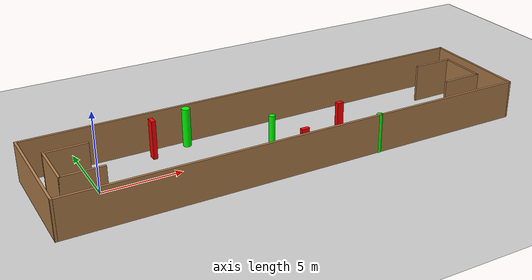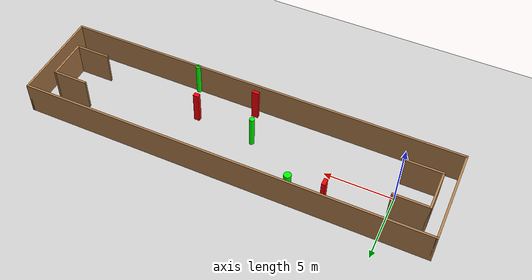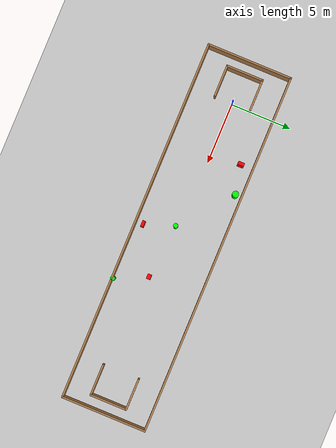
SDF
<sdf version="1.7">
 <world name="default">
  <light name="sun" type="directional">
   <pose>0 0 10 0 -0 0</pose>
   <diffuse>0.8 0.8 0.8 1</diffuse>
   <specular>0.2 0.2 0.2 1</specular>
   <attenuation>
    <range>1000</range>
    <constant>0.9</constant>
    <linear>0.01</linear>
    <quadratic>0.001</quadratic>
   </attenuation>
   <direction>-0.5 0.1 -0.9</direction>
   <spot><inner_angle>0</inner_angle><outer_angle>0</outer_angle><falloff>0</falloff></spot>
  </light>
  <model name="ground_plane">
   <static>1</static>
   <link name="link">
    <collision name="collision">
     <geometry><plane><normal>0 0 1</normal><size>100 100</size></plane></geometry>
     <surface>
      <contact><collide_bitmask>65535</collide_bitmask></contact>
      <friction><ode><mu>100</mu><mu2>50</mu2></ode></friction>
     </surface>
    </collision>
    <visual name="visual">
     <cast_shadows>0</cast_shadows>
     <geometry><plane><normal>0 0 1</normal><size>100 100</size></plane></geometry>
     <material>
      <script><uri>file://media/materials/scripts/gazebo.material</uri><name>Gazebo/Grey</name></script>
     </material>
    </visual>
   </link>
  </model>
  <gravity>0 0 -9.8</gravity>
  <magnetic_field>6e-06 2.3e-05 -4.2e-05</magnetic_field>
  <atmosphere type="adiabatic"/>
  <physics type="ode">
   <max_step_size>0.001</max_step_size>
   <real_time_factor>1</real_time_factor>
   <real_time_update_rate>1000</real_time_update_rate>
  </physics>
  <scene><ambient>0.4 0.4 0.4 1</ambient><background>0.7 0.7 0.7 1</background><shadows>1</shadows></scene>
  <spherical_coordinates>
   <surface_model>EARTH_WGS84</surface_model>
   <latitude_deg>0</latitude_deg>
   <longitude_deg>0</longitude_deg>
   <elevation>0</elevation>
   <heading_deg>0</heading_deg>
  </spherical_coordinates>
  <model name="my_base_walls">
   <link name="Wall_0">
    <collision name="Wall_0_Collision">
     <geometry><box><size>7.15 0.15 2.5</size></box></geometry>
     <pose>0 0 1.25 0 -0 0</pose>
    </collision>
    <visual name="Wall_0_Visual">
     <pose>0 0 1.25 0 -0 0</pose>
     <geometry><box><size>7.15 0.15 2.5</size></box></geometry>
     <material>
      <script><uri>file://media/materials/scripts/gazebo.material</uri><name>Gazebo/Wood</name></script>
      <ambient>1 1 1 1</ambient>
     </material>
     <meta><layer>0</layer></meta>
    </visual>
    <pose>-15 0 0 0 -0 1.5708</pose>
   </link>
   <link name="Wall_10">
    <collision name="Wall_10_Collision">
     <geometry><box><size>2.65 0.15 2.5</size></box></geometry>
     <pose>0 0 1.25 0 -0 0</pose>
    </collision>
    <visual name="Wall_10_Visual">
     <pose>0 0 1.25 0 -0 0</pose>
     <geometry><box><size>2.65 0.15 2.5</size></box></geometry>
     <material>
      <script><uri>file://media/materials/scripts/gazebo.material</uri><name>Gazebo/Wood</name></script>
      <ambient>1 1 1 1</ambient>
     </material>
     <meta><layer>0</layer></meta>
    </visual>
    <pose>-12.75 -1.5 0 0 -0 0</pose>
   </link>
   <link name="Wall_12">
    <collision name="Wall_12_Collision">
     <geometry><box><size>2.65 0.15 2.5</size></box></geometry>
     <pose>0 0 1.25 0 -0 0</pose>
    </collision>
    <visual name="Wall_12_Visual">
     <pose>0 0 1.25 0 -0 0</pose>
     <geometry><box><size>2.65 0.15 2.5</size></box></geometry>
     <material>
      <script><uri>file://media/materials/scripts/gazebo.material</uri><name>Gazebo/Wood</name></script>
      <ambient>1 1 1 1</ambient>
     </material>
     <meta><layer>0</layer></meta>
    </visual>
    <pose>-12.75 1.5 0 0 -0 0</pose>
   </link>
   <link name="Wall_14">
    <collision name="Wall_14_Collision">
     <geometry><box><size>3.15 0.15 2.5</size></box></geometry>
     <pose>0 0 1.25 0 -0 0</pose>
    </collision>
    <visual name="Wall_14_Visual">
     <pose>0 0 1.25 0 -0 0</pose>
     <geometry><box><size>3.15 0.15 2.5</size></box></geometry>
     <material>
      <script><uri>file://media/materials/scripts/gazebo.material</uri><name>Gazebo/Wood</name></script>
      <ambient>1 1 1 1</ambient>
     </material>
     <meta><layer>0</layer></meta>
    </visual>
    <pose>14 0 0 0 -0 -1.5708</pose>
   </link>
   <link name="Wall_15">
    <collision name="Wall_15_Collision">
     <geometry><box><size>2.65 0.15 2.5</size></box></geometry>
     <pose>0 0 1.25 0 -0 0</pose>
    </collision>
    <visual name="Wall_15_Visual">
     <pose>0 0 1.25 0 -0 0</pose>
     <geometry><box><size>2.65 0.15 2.5</size></box></geometry>
     <material>
      <script><uri>file://media/materials/scripts/gazebo.material</uri><name>Gazebo/Wood</name></script>
      <ambient>1 1 1 1</ambient>
     </material>
     <meta><layer>0</layer></meta>
    </visual>
    <pose>12.75 -1.5 0 0 -0 3.14159</pose>
   </link>
   <link name="Wall_17">
    <collision name="Wall_17_Collision">
     <geometry><box><size>2.65 0.15 2.5</size></box></geometry>
     <pose>0 0 1.25 0 -0 0</pose>
    </collision>
    <visual name="Wall_17_Visual">
     <pose>0 0 1.25 0 -0 0</pose>
     <geometry><box><size>2.65 0.15 2.5</size></box></geometry>
     <material>
      <script><uri>file://media/materials/scripts/gazebo.material</uri><name>Gazebo/Wood</name></script>
      <ambient>1 1 1 1</ambient>
     </material>
     <meta><layer>0</layer></meta>
    </visual>
    <pose>12.75 1.5 0 0 -0 3.14159</pose>
   </link>
   <link name="Wall_2">
    <collision name="Wall_2_Collision">
     <geometry><box><size>30.15 0.15 2.5</size></box></geometry>
     <pose>0 0 1.25 0 -0 0</pose>
    </collision>
    <visual name="Wall_2_Visual">
     <pose>0 0 1.25 0 -0 0</pose>
     <geometry><box><size>30.15 0.15 2.5</size></box></geometry>
     <material>
      <script><uri>file://media/materials/scripts/gazebo.material</uri><name>Gazebo/Wood</name></script>
      <ambient>1 1 1 1</ambient>
     </material>
     <meta><layer>0</layer></meta>
    </visual>
    <pose>-0 -3.5 0 0 -0 0</pose>
   </link>
   <link name="Wall_4">
    <collision name="Wall_4_Collision">
     <geometry><box><size>30.15 0.15 2.5</size></box></geometry>
     <pose>0 0 1.25 0 -0 0</pose>
    </collision>
    <visual name="Wall_4_Visual">
     <pose>0 0 1.25 0 -0 0</pose>
     <geometry><box><size>30.15 0.15 2.5</size></box></geometry>
     <material>
      <script><uri>file://media/materials/scripts/gazebo.material</uri><name>Gazebo/Wood</name></script>
      <ambient>1 1 1 1</ambient>
     </material>
     <meta><layer>0</layer></meta>
    </visual>
    <pose>-0 3.5 0 0 -0 0</pose>
   </link>
   <link name="Wall_6">
    <collision name="Wall_6_Collision">
     <geometry><box><size>7.15 0.15 2.5</size></box></geometry>
     <pose>0 0 1.25 0 -0 0</pose>
    </collision>
    <visual name="Wall_6_Visual">
     <pose>0 0 1.25 0 -0 0</pose>
     <geometry><box><size>7.15 0.15 2.5</size></box></geometry>
     <material>
      <script><uri>file://media/materials/scripts/gazebo.material</uri><name>Gazebo/Wood</name></script>
      <ambient>1 1 1 1</ambient>
     </material>
     <meta><layer>0</layer></meta>
    </visual>
    <pose>15 0 0 0 -0 -1.5708</pose>
   </link>
   <link name="Wall_9">
    <collision name="Wall_9_Collision">
     <geometry><box><size>3.15 0.15 2.5</size></box></geometry>
     <pose>0 0 1.25 0 -0 0</pose>
    </collision>
    <visual name="Wall_9_Visual">
     <pose>0 0 1.25 0 -0 0</pose>
     <geometry><box><size>3.15 0.15 2.5</size></box></geometry>
     <material>
      <script><uri>file://media/materials/scripts/gazebo.material</uri><name>Gazebo/Wood</name></script>
      <ambient>1 1 1 1</ambient>
     </material>
     <meta><layer>0</layer></meta>
    </visual>
    <pose>-14 0 0 0 -0 -1.5708</pose>
   </link>
   <static>1</static>
   <pose>11.5 0 0 0 -0 0</pose>
  </model>
  <model name="cylinder1">
   <static>1</static>
   <link name="link">
    <inertial>
     <mass>1</mass>
     <inertia><ixx>0.5</ixx><ixy>0</ixy><ixz>0</ixz><iyy>0.5</iyy><iyz>0</iyz><izz>1</izz></inertia>
    </inertial>
    <collision name="collision">
     <geometry><cylinder><radius>0.26423631897424793</radius><length>2.5</length></cylinder></geometry>
    </collision>
    <visual name="visual">
     <geometry><cylinder><radius>0.26423631897424793</radius><length>2.5</length></cylinder></geometry>
     <material>
      <ambient>0 1 0 1</ambient>
      <diffuse>0 1 0 1</diffuse>
      <specular>0.1 0.1 0.1 1</specular>
      <emissive>0 0 0 0</emissive>
     </material>
    </visual>
   </link>
   <pose>6.599625222343942 2.9691483502270133 1.25 0 0 0</pose>
  </model>
  <model name="cylinder2">
   <static>1</static>
   <link name="link">
    <inertial>
     <mass>1</mass>
     <inertia><ixx>0.5</ixx><ixy>0</ixy><ixz>0</ixz><iyy>0.5</iyy><iyz>0</iyz><izz>1</izz></inertia>
    </inertial>
    <collision name="collision">
     <geometry><cylinder><radius>0.18762224207754774</radius><length>2.5</length></cylinder></geometry>
    </collision>
    <visual name="visual">
     <geometry><cylinder><radius>0.18762224207754774</radius><length>2.5</length></cylinder></geometry>
     <material>
      <ambient>0 1 0 1</ambient>
      <diffuse>0 1 0 1</diffuse>
      <specular>0.1 0.1 0.1 1</specular>
      <emissive>0 0 0 0</emissive>
     </material>
    </visual>
   </link>
   <pose>16.381106791600132 -3.424622675102258 1.25 0 0 0</pose>
  </model>
  <model name="cylinder3">
   <static>1</static>
   <link name="link">
    <inertial>
     <mass>1</mass>
     <inertia><ixx>0.5</ixx><ixy>0</ixy><ixz>0</ixz><iyy>0.5</iyy><iyz>0</iyz><izz>1</izz></inertia>
    </inertial>
    <collision name="collision">
     <geometry><cylinder><radius>0.19024917426060492</radius><length>2.5</length></cylinder></geometry>
    </collision>
    <visual name="visual">
     <geometry><cylinder><radius>0.19024917426060492</radius><length>2.5</length></cylinder></geometry>
     <material>
      <ambient>0 1 0 1</ambient>
      <diffuse>0 1 0 1</diffuse>
      <specular>0.1 0.1 0.1 1</specular>
      <emissive>0 0 0 0</emissive>
     </material>
    </visual>
   </link>
   <pose>10.684576766037676 -0.4293460348953926 1.25 0 0 0</pose>
  </model>
  <model name="box1">
   <static>1</static>
   <link name="link">
    <inertial>
     <mass>1</mass>
     <inertia><ixx>0.083</ixx><ixy>0</ixy><ixz>0</ixz><iyy>0.083</iyy><iyz>0</iyz><izz>0.083</izz></inertia>
    </inertial>
    <collision name="collision">
     <geometry><box><size>0.41576697731043444 0.3075408452083757 2.5</size></box></geometry>
    </collision>
    <visual name="visual">
     <geometry><box><size>0.41576697731043444 0.3075408452083757 2.5</size></box></geometry>
     <material>
      <ambient>1 0 0 1</ambient>
      <diffuse>1 0 0 1</diffuse>
      <specular>0.1 0.1 0.1 1</specular>
      <emissive>0 0 0 0</emissive>
     </material>
    </visual>
    <sensor name="my_contact" type="contact">
     <contact><collision>box_collision</collision><topic>__default_topic__</topic></contact>
    </sensor>
   </link>
   <pose>15.19174368572787 -0.8379108508311588 1.25 0 0 0</pose>
  </model>
  <model name="box2">
   <static>1</static>
   <link name="link">
    <inertial>
     <mass>1</mass>
     <inertia><ixx>0.083</ixx><ixy>0</ixy><ixz>0</ixz><iyy>0.083</iyy><iyz>0</iyz><izz>0.083</izz></inertia>
    </inertial>
    <collision name="collision">
     <geometry><box><size>0.27194873925253676 0.5319395519269754 2.5</size></box></geometry>
    </collision>
    <visual name="visual">
     <geometry><box><size>0.27194873925253676 0.5319395519269754 2.5</size></box></geometry>
     <material>
      <ambient>1 0 0 1</ambient>
      <diffuse>1 0 0 1</diffuse>
      <specular>0.1 0.1 0.1 1</specular>
      <emissive>0 0 0 0</emissive>
     </material>
    </visual>
    <sensor name="my_contact" type="contact">
     <contact><collision>box_collision</collision><topic>__default_topic__</topic></contact>
    </sensor>
   </link>
   <pose>4.219376367587056 2.4670148092081714 1.25 0 0 0</pose>
  </model>
  <model name="box3">
   <static>1</static>
   <link name="link">
    <inertial>
     <mass>1</mass>
     <inertia><ixx>0.083</ixx><ixy>0</ixy><ixz>0</ixz><iyy>0.083</iyy><iyz>0</iyz><izz>0.083</izz></inertia>
    </inertial>
    <collision name="collision">
     <geometry><box><size>0.5086908835946964 0.23261421914510122 2.5</size></box></geometry>
    </collision>
    <visual name="visual">
     <geometry><box><size>0.5086908835946964 0.23261421914510122 2.5</size></box></geometry>
     <material>
      <ambient>1 0 0 1</ambient>
      <diffuse>1 0 0 1</diffuse>
      <specular>0.1 0.1 0.1 1</specular>
      <emissive>0 0 0 0</emissive>
     </material>
    </visual>
    <sensor name="my_contact" type="contact">
     <contact><collision>box_collision</collision><topic>__default_topic__</topic></contact>
    </sensor>
   </link>
   <pose>11.520850444604285 -2.869817653291028 1.25 0 0 0</pose>
  </model>
 </world>
</sdf>
